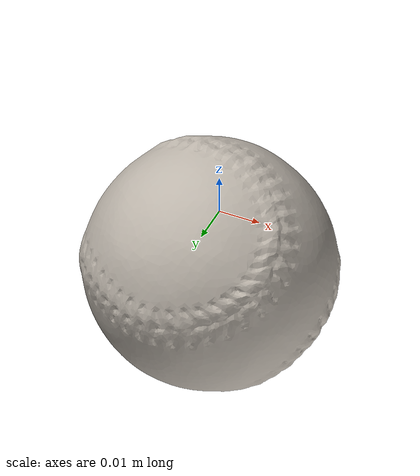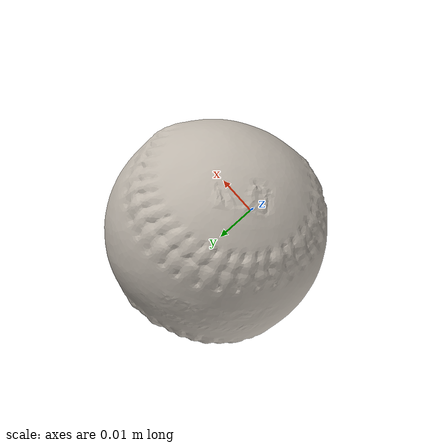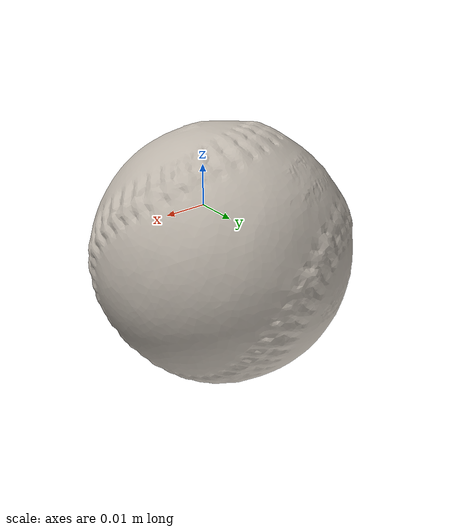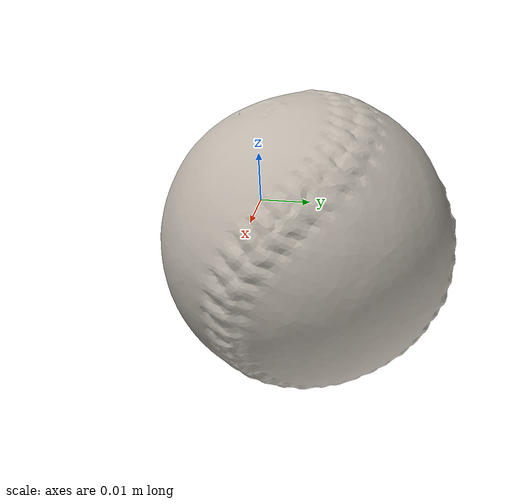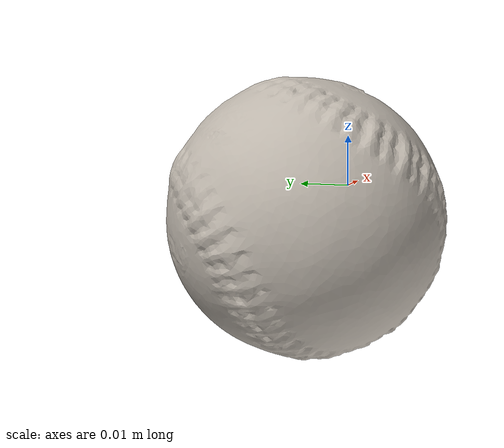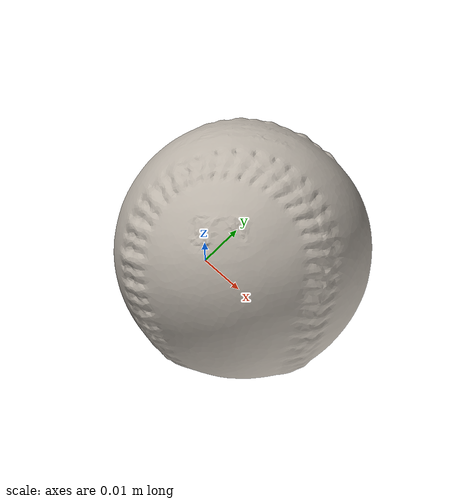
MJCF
<mujoco model="bread">
  <asset>
    <mesh file="nontextured.stl" name="obj_mesh" scale="0.8 0.8 0.8"/>
    <texture file="../../../../../textures/bread.png" type="2d" name="tex-bread" />
    <material name="bread" reflectance="0.7" texrepeat="15 15" texture="tex-bread" texuniform="true"/>
  </asset>
  <worldbody>
    <body>
      <body name="collision">
        <geom pos="0.010081000000000001 0.048244999999999996 -0.036076500000000004" mesh="obj_mesh" type="mesh" solimp="0.998 0.998 0.001" solref="0.001 1" density="50" friction="0.95 0.3 0.1"  material="bread" group="1" condim="4"/>
      </body>
      <body name="visual">
        <geom pos="0.010081000000000001 0.048244999999999996 -0.036076500000000004" mesh="obj_mesh" type="mesh" material="bread"  conaffinity="0" contype="0"  group="0" mass="0.0001"/>
        <geom pos="0.010081000000000001 0.048244999999999996 -0.036076500000000004" mesh="obj_mesh" type="mesh" material="bread"  conaffinity="0" contype="0"  group="1" mass="0.0001"/>
      </body>
      <site rgba="0 0 0 0" size="0.005" pos="0 0 -0.0362815" name="bottom_site"/>
      <site rgba="0 0 0 0" size="0.005" pos="0 0 0.0362815" name="top_site"/>
      <site rgba="0 0 0 0" size="0.005" pos="0.036539 0.036856 0.0362815" name="horizontal_radius_site"/>
    </body>
  </worldbody>
</mujoco>
